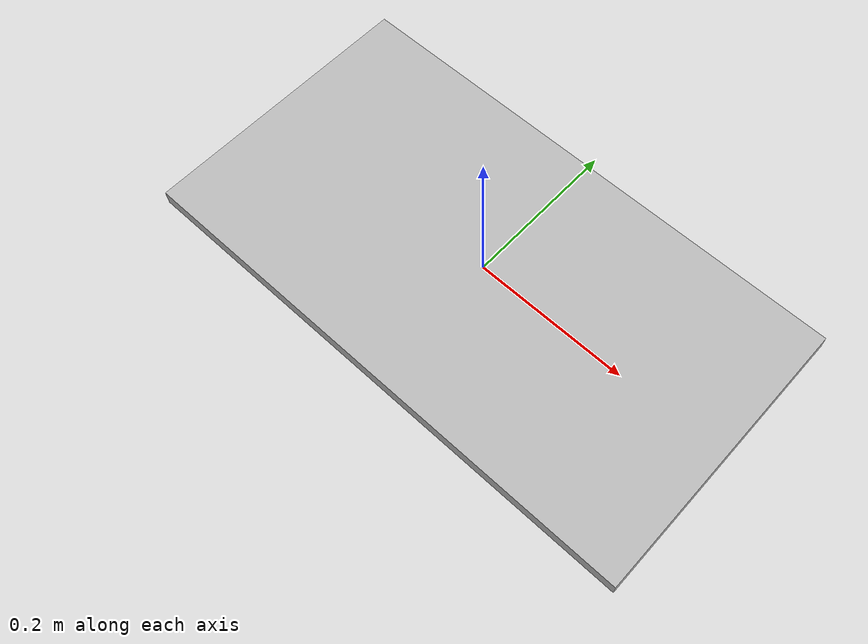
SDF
<?xml version="1.0" ?>
<sdf version="1.5">
  <model name="dia_panel_big">
    <static>true</static>
    <link name="link">
      <collision name="surface">
        <pose>0 0 0 0 0 0</pose>
        <geometry>
          <box>
            <size>0.68 0.364 0.02</size>
          </box>
        </geometry>
      </collision>
      <visual name="surface">
        <pose>0 0 0 0 0 0</pose>
        <geometry>
          <box>
            <size>0.68 0.364 0.02</size>
          </box>
        </geometry>
        <material>
          <script>
            <uri>model://dia_panel_big/materials/scripts</uri>
            <uri>model://dia_panel_big/materials/textures</uri>
            <name>dia_panel_big/Diffuse</name>
          </script>
        </material>
      </visual>
    </link>
  </model>
</sdf>
